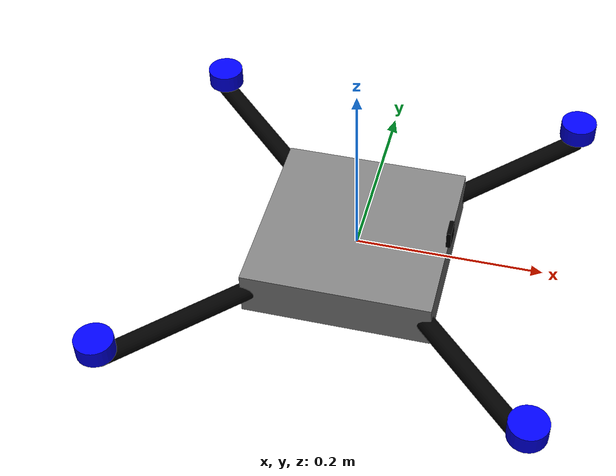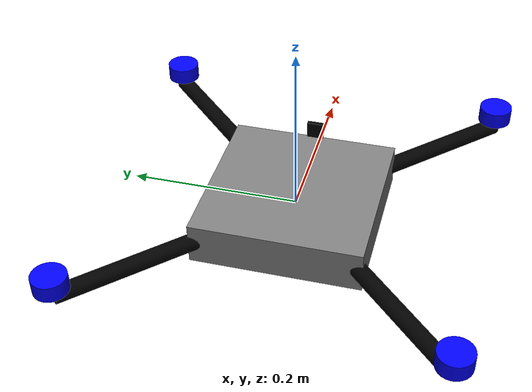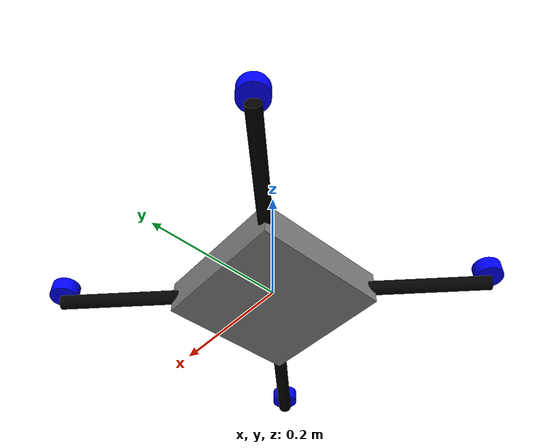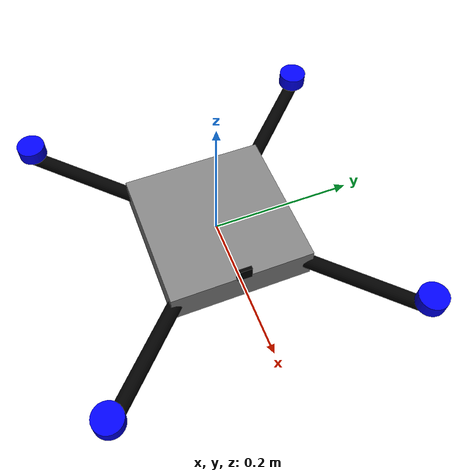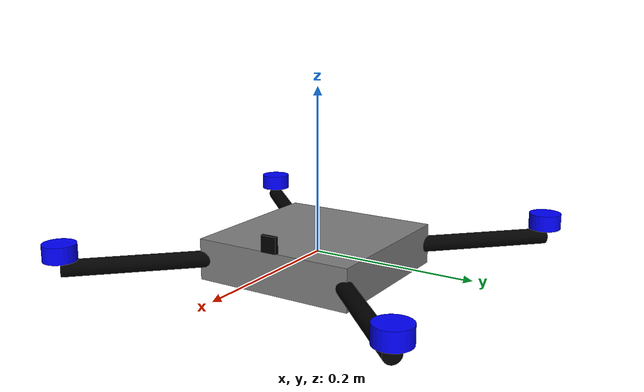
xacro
<?xml version="1.0"?>
<robot name="my_quadracopter" xmlns:xacro="http://www.ros.org/wiki/xacro">

  <!-- Materiales -->
  <material name="gray"><color rgba="0.5 0.5 0.5 1.0"/></material>
  <material name="black"><color rgba="0.0 0.0 0.0 1.0"/></material>
  <material name="blue"><color rgba="0.0 0.0 1.0 1.0"/></material>

  <!-- Cuerpo central -->
  <link name="base_link">
    <visual>
      <origin xyz="0 0 0" rpy="0 0 0"/>
      <geometry><box size="0.2 0.2 0.05"/></geometry>
      <material name="gray"/>
    </visual>
    <collision>
      <origin xyz="0 0 0" rpy="0 0 0"/>
      <geometry><box size="0.2 0.2 0.05"/></geometry>
    </collision>
    <inertial>
      <mass value="1.0"/>
      <origin xyz="0 0 0" rpy="0 0 0"/>
      <inertia ixx="0.001" iyy="0.001" izz="0.001" ixy="0" ixz="0" iyz="0"/>
    </inertial>
  </link>

  <!-- Macro de brazo con motor -->
  <xacro:macro name="arm_with_motor" params="name parent yaw arm_length">
    <xacro:property name="ox" value="${0.5 * arm_length * cos(yaw)}"/>
    <xacro:property name="oy" value="${0.5 * arm_length * sin(yaw)}"/>
    <xacro:property name="mx" value="${arm_length * cos(yaw)}"/>
    <xacro:property name="my" value="${arm_length * sin(yaw)}"/>

    <link name="${name}_arm">
      <visual>
        <origin xyz="${ox} ${oy} 0" rpy="${pi/2} 0 ${-1 * yaw}"/>
        <geometry><cylinder length="${arm_length}" radius="0.01"/></geometry>
        <material name="black"/>
      </visual>
      <collision>
        <origin xyz="${ox} ${oy} 0" rpy="${pi/2} 0 ${-1 * yaw}"/>
        <geometry><cylinder length="${arm_length}" radius="0.01"/></geometry>
      </collision>
      <inertial>
        <mass value="0.05"/>
        <origin xyz="0 0 0" rpy="0 0 0"/>
        <inertia ixx="1e-5" iyy="1e-5" izz="1e-5" ixy="0" ixz="0" iyz="0"/>
      </inertial>
    </link>

    <joint name="joint_${name}_arm" type="fixed">
      <parent link="${parent}"/>
      <child link="${name}_arm"/>
      <origin xyz="${ox} ${oy} 0" rpy="0 0 0"/>
    </joint>

    <link name="${name}_motor">
      <visual>
        <origin xyz="0 0 0" rpy="0 0 0"/>
        <geometry><cylinder length="0.02" radius="0.02"/></geometry>
        <material name="blue"/>
      </visual>
      <collision>
        <origin xyz="0 0 0" rpy="0 0 0"/>
        <geometry><cylinder length="0.02" radius="0.02"/></geometry>
      </collision>
      <inertial>
        <mass value="0.05"/>
        <origin xyz="0 0 0" rpy="0 0 0"/>
        <inertia ixx="1e-5" iyy="1e-5" izz="1e-5" ixy="0" ixz="0" iyz="0"/>
      </inertial>
    </link>

    <joint name="joint_${name}_motor" type="continuous">
      <parent link="${name}_arm"/>
      <child link="${name}_motor"/>
      <origin xyz="${mx} ${my} 0.02" rpy="0 0 0"/>
      <axis xyz="0 0 1"/>
      <dynamics damping="0.01" friction="1.5"/>
    </joint>
  </xacro:macro>

  <!-- Cuatro brazos con motores -->
  <xacro:arm_with_motor name="front_left"  parent="base_link" yaw="0.7854"  arm_length="0.2"/>
  <xacro:arm_with_motor name="front_right" parent="base_link" yaw="-0.7854" arm_length="0.2"/>
  <xacro:arm_with_motor name="back_left"   parent="base_link" yaw="2.3562"  arm_length="0.2"/>
  <xacro:arm_with_motor name="back_right"  parent="base_link" yaw="-2.3562" arm_length="0.2"/>

  <link name="camera_link">
    <visual>
      <origin xyz="0 0 0" rpy="0 0 0"/>
      <geometry>
        <box size="0.005 0.02 0.02"/>
      </geometry>
      <material name="black"/>
    </visual>
  </link>

  <!-- Articulación fija para unirla al robot -->
  <joint name="camera_joint" type="fixed">
    <parent link="base_link"/>
    <child link="camera_link"/>
    <origin xyz="0.1 0 0.035" rpy="0 0 0"/>
  </joint>

  <gazebo>
    <!-- Wrench/motores -->
    <plugin name="wrenches_plugin" filename="libwrenches_plugin.so">
      <link_name_motor1>front_left_motor</link_name_motor1>
      <topic_motor1>__NS__/motor/fl</topic_motor1>

      <link_name_motor2>front_right_motor</link_name_motor2>
      <topic_motor2>__NS__/motor/fr</topic_motor2>

      <link_name_motor3>back_left_motor</link_name_motor3>
      <topic_motor3>__NS__/motor/bl</topic_motor3>

      <link_name_motor4>back_right_motor</link_name_motor4>
      <topic_motor4>__NS__/motor/br</topic_motor4>
    </plugin>

    <!-- IMU -->
    <plugin name="imu_plugin" filename="libimu_plugin.so">
      <link_name_imu>base_link</link_name_imu>
      <frame_id_imu>__FRAME_PREFIX__base_link</frame_id_imu>
      <topic_imu>__NS__/sensor/imu</topic_imu>
      <update_rate_imu>200</update_rate_imu>
      <remove_gravity_imu>false</remove_gravity_imu>
      <ros><namespace>__NS__</namespace></ros>
    </plugin>

    <!-- Barómetro -->
    <plugin name="barometer_plugin" filename="libbarometer_plugin.so">
      <link_name_baro>base_link</link_name_baro>
      <frame_id_baro>__FRAME_PREFIX__base_link</frame_id_baro>
      <topic_baro>__NS__/sensor/baro</topic_baro>
      <update_rate_baro>50</update_rate_baro>
      <ref_altitude_baro>0.0</ref_altitude_baro>
      <p0_baro>101325.0</p0_baro>
      <T_baro>288.15</T_baro>
      <ros><namespace>__NS__</namespace></ros>
    </plugin>

    <!-- Magnetómetro -->
    <plugin name="magnetometer_plugin" filename="libmagnetometer_plugin.so">
      <link_name_mag>base_link</link_name_mag>
      <frame_id_mag>__FRAME_PREFIX__base_link</frame_id_mag>
      <topic_mag>__NS__/sensor/mag</topic_mag>
      <update_rate_mag>100</update_rate_mag>
      <Bx_world>2.0e-5</Bx_world><By_world>0.0</By_world><Bz_world>-4.0e-5</Bz_world>
      <ros><namespace>__NS__</namespace></ros>
    </plugin>

    <!-- Ground truth -->
    <plugin name="ground_truth_plugin" filename="libground_truth_plugin.so">
      <link_name_gt>base_link</link_name_gt>
      <frame_id_gt>world</frame_id_gt>
      <topic_gt>__NS__/ground_truth/pose</topic_gt>
      <update_rate_gt>100</update_rate_gt>
      <param_ns>ground_truth</param_ns>
      <ros><namespace>__NS__</namespace></ros>
    </plugin>
  </gazebo>

  <gazebo reference="camera_link">
    <sensor type="camera" name="sensor/camera" always_on="true" update_rate="30">
      <pose>0 0 0 0 0 0</pose>
      <camera>
        <!-- FOV ~ 80° -->
        <horizontal_fov>1.3962634</horizontal_fov>
        <image>
          <width>640</width>
          <height>480</height>
          <format>R8G8B8</format>
        </image>
        <clip>
          <near>0.05</near>
          <far>50.0</far>
        </clip>
      </camera>

      <!-- Plugin ROS que publica /image_raw y /camera_info -->
      <plugin name="camera_controller" filename="libgazebo_ros_camera.so">
        <!-- Mantén tu convención de namespaces -->
        <robotNamespace>__NS__</robotNamespace>

        <!-- Nombres de tópicos relativos al namespace -->
        <cameraName>camera</cameraName>
        <imageTopicName>__NS__/sensor/camera/image_raw</imageTopicName>
        <cameraInfoTopicName>__NS__/sensor/camera/camera_info</cameraInfoTopicName>

        <!-- Frame -->
        <frameName>__FRAME_PREFIX__camera_link</frameName>

        <!-- Opcionales útiles -->
        <hackBaseline>0.0</hackBaseline>
        <CxPrime>0</CxPrime>
        <Cx>0</Cx>
        <Cy>0</Cy>
      </plugin>
    </sensor>
  </gazebo>

</robot>
